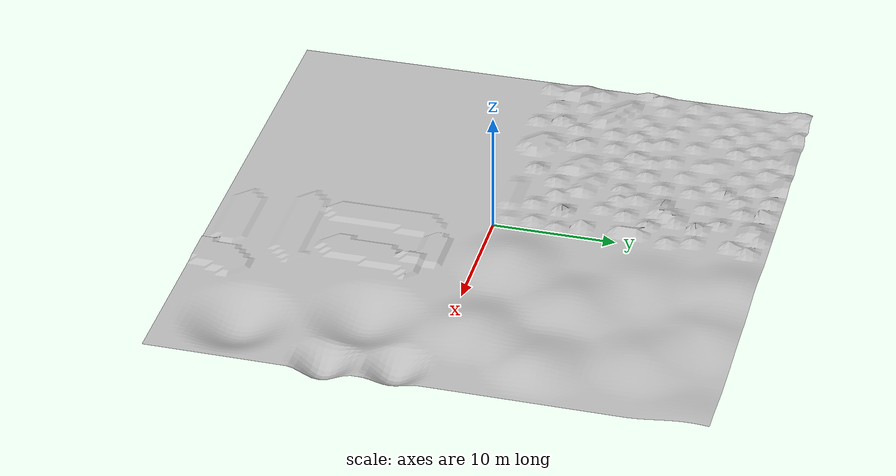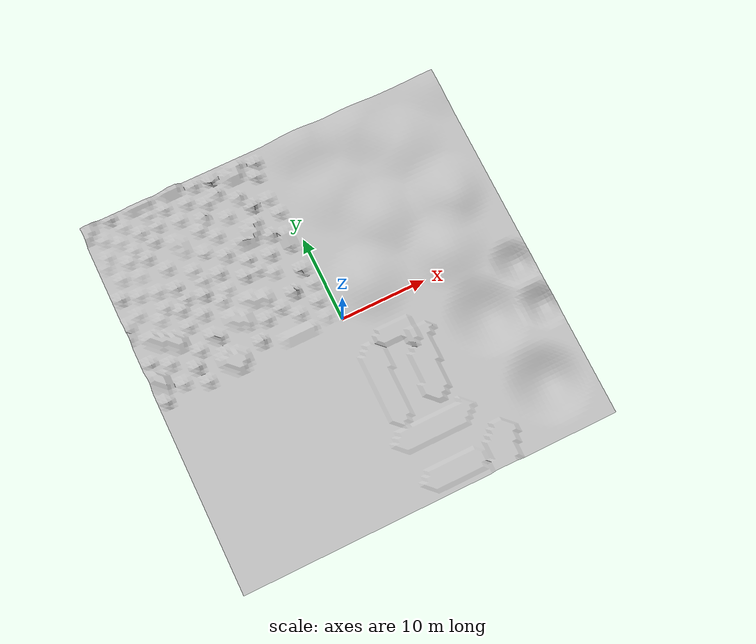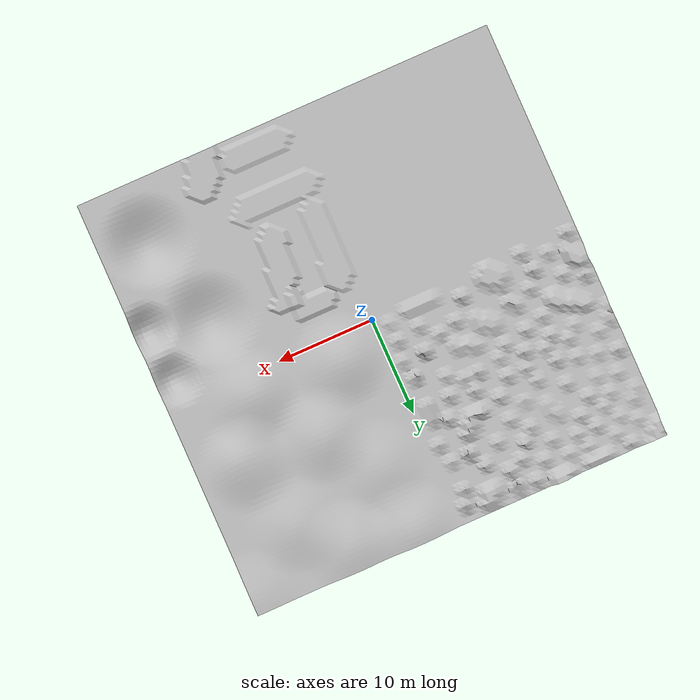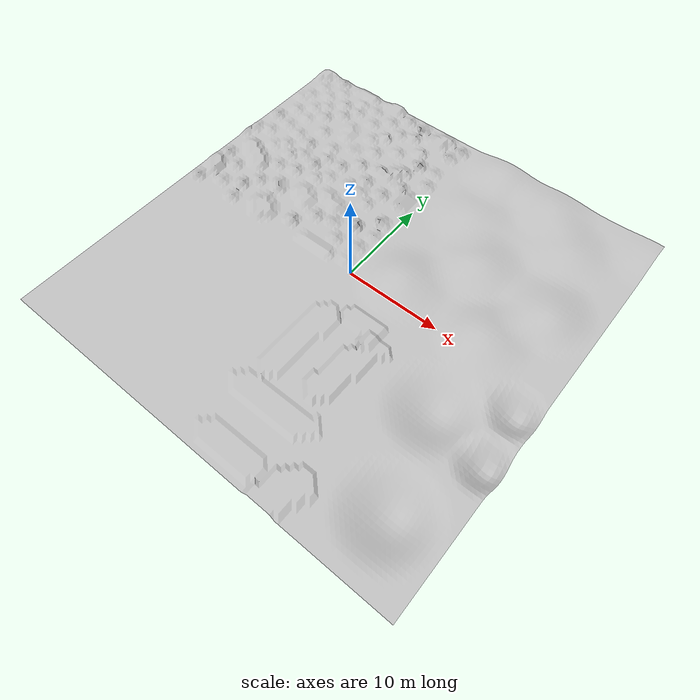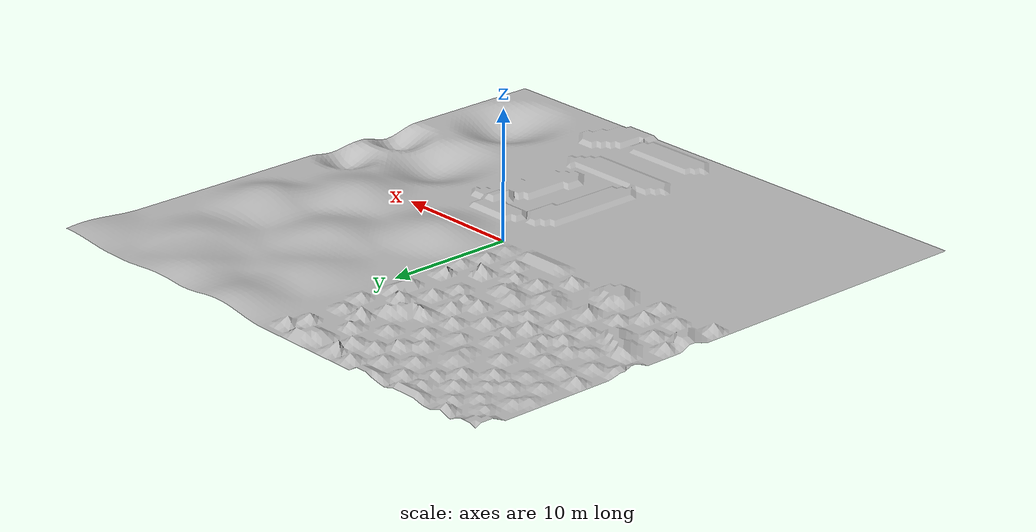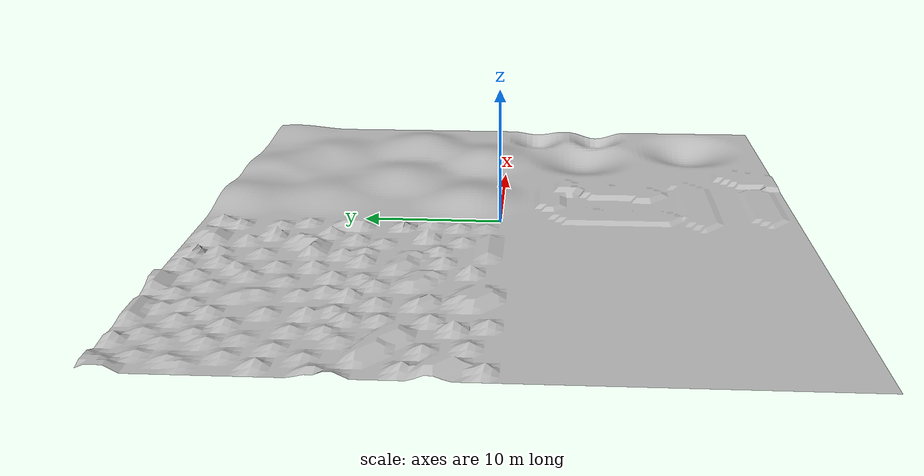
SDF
<sdf version="1.7">
 <world name="default">
  <scene><shadows>0</shadows></scene>
  <light name="sun" type="directional">
   <pose>0 0 10 0.5 0.5 0</pose>
   <diffuse>0.8 0.8 0.8 1</diffuse>
   <specular>0.2 0.2 0.2 1</specular>
   <attenuation>
    <range>1000</range>
    <constant>0.9</constant>
    <linear>0.01</linear>
    <quadratic>0.001</quadratic>
   </attenuation>
   <direction>-0.5 -0.5 -1</direction>
   <spot><inner_angle>0</inner_angle><outer_angle>0</outer_angle><falloff>0</falloff></spot>
  </light>
  <model name="my_terrain">
   <static>1</static>
   <link name="link">
    <visual name="visual">
     <geometry><mesh><uri>src/peter_robot/models/map/meshes/mapa_gazebo.obj</uri></mesh></geometry>
     <material>
      <script><uri>src/peter_robot/models/map/materials/scripts/</uri><name>my_texture</name></script>
     </material>
    </visual>
    <collision name="collision">
     <geometry><mesh><uri>src/peter_robot/models/map/meshes/mapa_gazebo.obj</uri></mesh></geometry>
    </collision>
   </link>
  </model>
  <gravity>0 0 -9.8</gravity>
  <magnetic_field>6e-06 2.3e-05 -4.2e-05</magnetic_field>
  <atmosphere type="adiabatic"/>
  <physics type="ode">
   <max_step_size>0.001</max_step_size>
   <real_time_factor>1</real_time_factor>
   <real_time_update_rate>1000</real_time_update_rate>
  </physics>
  <scene><ambient>0.4 0.4 0.4 1</ambient><background>0.7 0.7 0.7 1</background><shadows>0</shadows></scene>
  <audio><device>default</device></audio>
  <spherical_coordinates>
   <surface_model>EARTH_WGS84</surface_model>
   <latitude_deg>0</latitude_deg>
   <longitude_deg>0</longitude_deg>
   <elevation>0</elevation>
   <heading_deg>0</heading_deg>
  </spherical_coordinates>
 </world>
</sdf>
